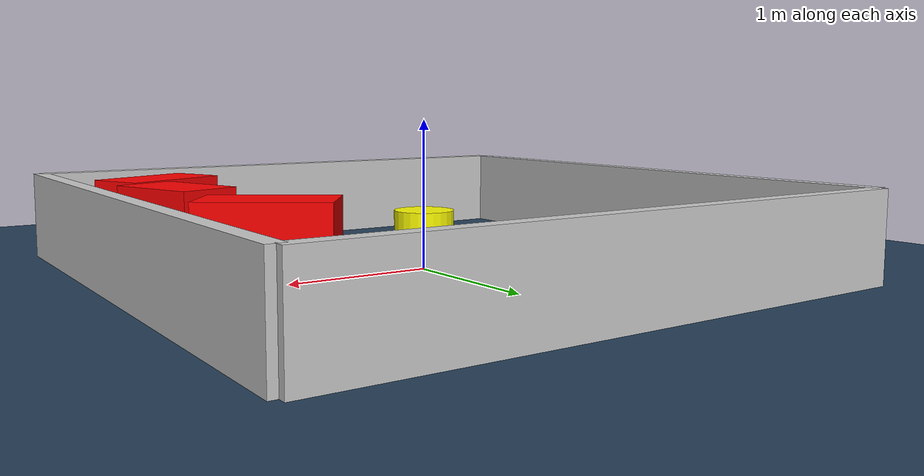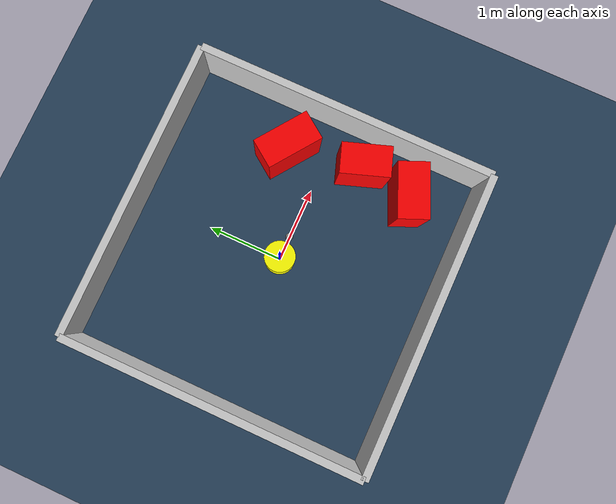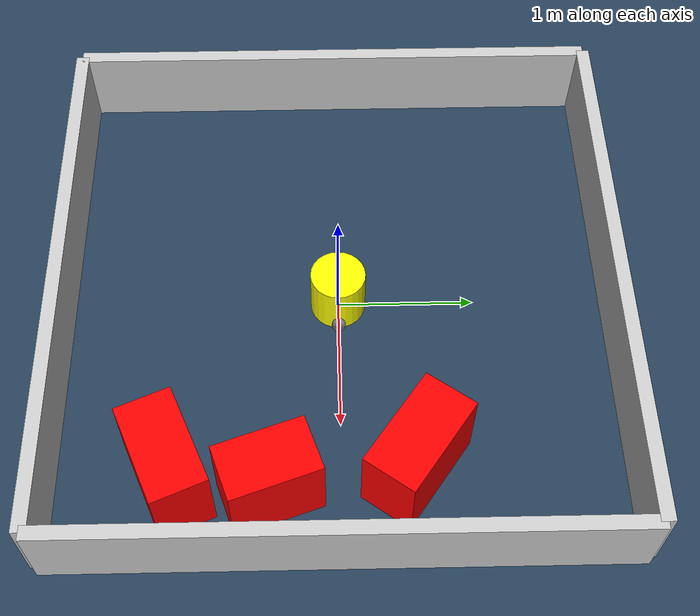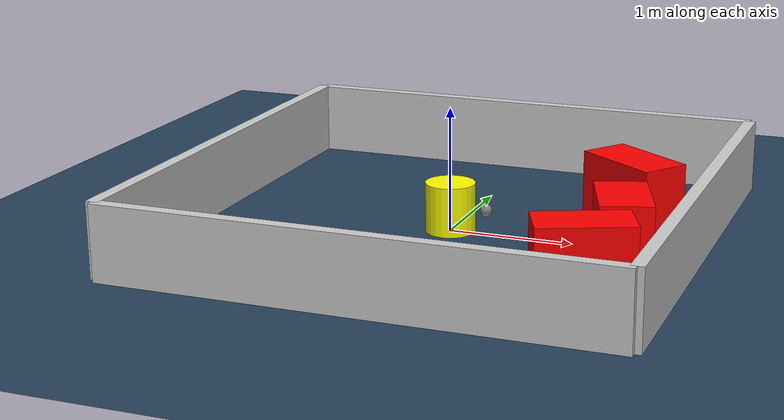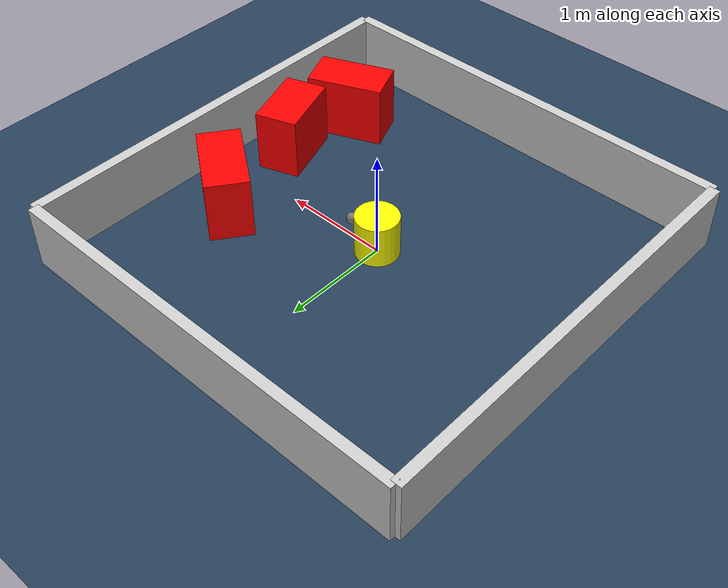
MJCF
<?xml version="1.0" ?>
<mujoco model="generated_environment">
  <option timestep="0.01" integrator="RK4" cone="elliptic"/>
  <default>
    <geom density="1"/>
  </default>
  <asset>
    <texture builtin="gradient" height="3072" rgb1="0.3 0.5 0.7" rgb2="0 0 0" type="skybox" width="512"/>
    <texture builtin="checker" height="300" mark="edge" markrgb="0.8 0.8 0.8" name="groundplane" rgb1="0.2 0.3 0.4" rgb2="0.1 0.2 0.3" type="2d" width="300"/>
    <material name="groundplane" reflectance="0.2" texrepeat="5 5" texture="groundplane" texuniform="true"/>
    <material name="robot" rgba="0.0 1.0 0.0 1"/>
  </asset>
  <worldbody>
    <light dir="0 0 -1" directional="true" pos="0 0 1.5"/>
    <geom condim="4" friction="1.0 0.005 0.001" material="groundplane" name="floor" size="0 0 0.05" type="plane"/>
    <body name="walls">
      <geom name="wall_1" condim="4" pos="-2.0 0.0 0.3" rgba="0.800000011920929 0.800000011920929 0.800000011920929 1.0" size="0.05 2.0 0.3" type="box"/>
      <geom name="wall_2" condim="4" pos="2.0 0.0 0.3" rgba="0.800000011920929 0.800000011920929 0.800000011920929 1.0" size="0.05 2.0 0.3" type="box"/>
      <geom name="wall_3" condim="4" pos="0.0 -2.0 0.3" rgba="0.800000011920929 0.800000011920929 0.800000011920929 1.0" size="2.0 0.05 0.3" type="box"/>
      <geom name="wall_4" condim="4" pos="0.0 2.0 0.3" rgba="0.800000011920929 0.800000011920929 0.800000011920929 1.0" size="2.0 0.05 0.3" type="box"/>
    </body>
    <body name="robot">
      <joint name="joint_x" type="slide" pos="0 0 0" axis="1 0 0"/>
      <joint name="joint_y" type="slide" pos="0 0 0" axis="0 1 0"/>
      <geom name="robot" type="sphere" pos="0.3 0.0 0.2" size="0.05" mass="5." friction="1.0 0.005 0.0001" condim="4" rgba="0.5 0.5 0.5 1.0"/>
      <site name="sensor_ball"/>
    </body>
    <body name="obstacle_movable_1">
      <geom name="obstacle_movable_1" condim="4" pos="0.0 0.0 0.2" euler="0 0 0.0" friction="1.0 0.005 0.001" rgba="1.0 1.0 0.0 1.0" size="0.2 0.2 0.0" type="cylinder" mass="0.1"/>
      <joint type="free"/>
    </body>
    <body name="obstacle_2_static">
      <geom name="obstacle_2_static" condim="4" pos="1.3547974655328154 0.508744660902188 0.3" euler="0 0 324.26704642880287" friction="1.0 0.005 0.001" rgba="1 0 0 1" size="0.3805632815338647 0.2 0.3" type="box"/>
    </body>
    <body name="obstacle_3_static">
      <geom name="obstacle_3_static" condim="4" pos="1.4142775878169687 -1.1682264674519405 0.3" euler="0 0 202.97751113109982" friction="1.0 0.005 0.001" rgba="1 0 0 1" size="0.36287063612905024 0.2 0.3" type="box"/>
    </body>
    <body name="obstacle_4_static">
      <geom name="obstacle_4_static" condim="4" pos="1.5229616161899822 -0.482167624987317 0.3" euler="0 0 109.1670651230234" friction="1.0 0.005 0.001" rgba="1 0 0 1" size="0.3222811151048855 0.2 0.3" type="box"/>
    </body>
  </worldbody>
  <actuator>
    <motor name="actuator_x" joint="joint_x" gear="1" ctrlrange="-1 1"/>
    <motor name="actuator_y" joint="joint_y" gear="1" ctrlrange="-1 1"/>
  </actuator>
</mujoco>
